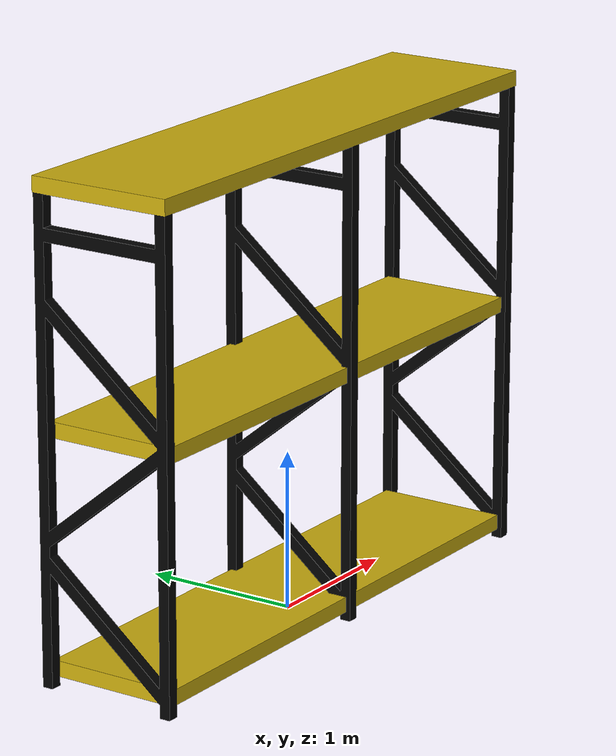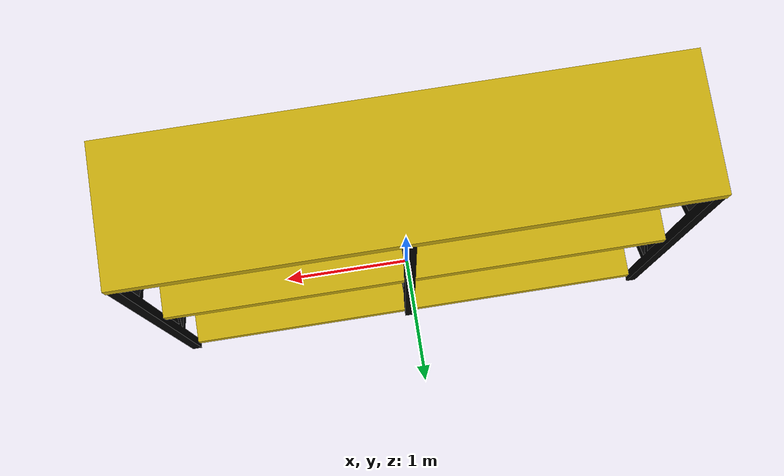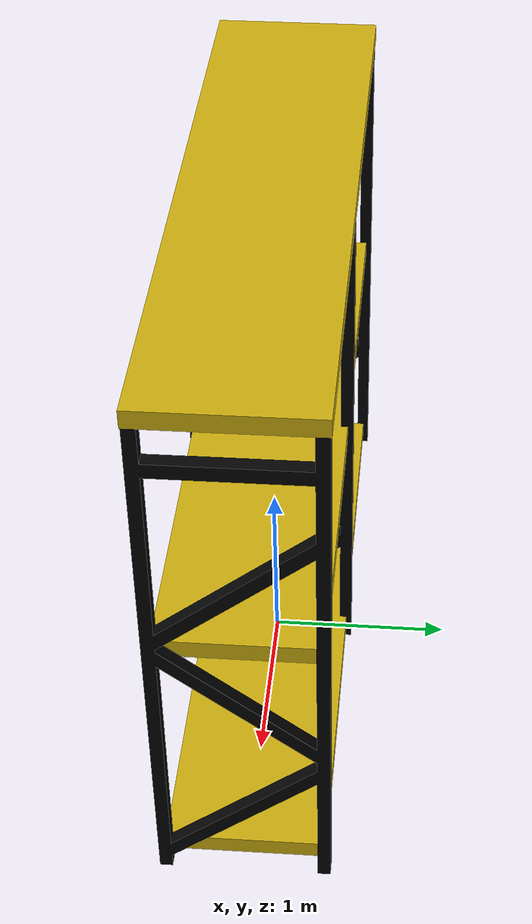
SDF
<?xml version='1.0'?>
<sdf version='1.7'>
  <model name='shelf_empty'>
    <pose>0 0 0 0 0 0</pose>
    <self_collide>true</self_collide>
    <!-- BASE_LINK FRAME -->
    <link name='shelf_empty_base'>
      <pose>0 0 0 0 0 0</pose>
      <collision name='shelf_empty_bottom_shelf_collision'>
        <pose>0 0 0.10256 0 0 1.57079632679</pose>
        <geometry>
          <box>
            <size>0.845782 3.55323 0.097741</size>
          </box>
        </geometry>
      </collision>
      <collision name='shelf_empty_middle_shelf_collision'>
        <pose>0 0 1.56071 0 0 1.57079632679</pose>
        <geometry>
          <box>
            <size>0.845782 3.55323 0.097741</size>
          </box>
        </geometry>
      </collision>
      <collision name='shelf_empty_top_shelf_collision'>
        <pose>0 0 3.01468 0 0 1.57079632679</pose>
        <geometry>
          <box>
            <size>0.845782 3.55323 0.097741</size>
          </box>
        </geometry>
      </collision>
      <visual name='shelf_empty_chassi_visual'>
        <pose>0 0 0 0 0 1.57079632679</pose>
        <geometry>
          <mesh>
            <scale>1 1 1</scale>
            <uri>meshes/shelf_empty_movai.dae</uri>
          </mesh>
        </geometry>
      </visual>
    </link>
    <static>1</static>
  </model>
</sdf>
